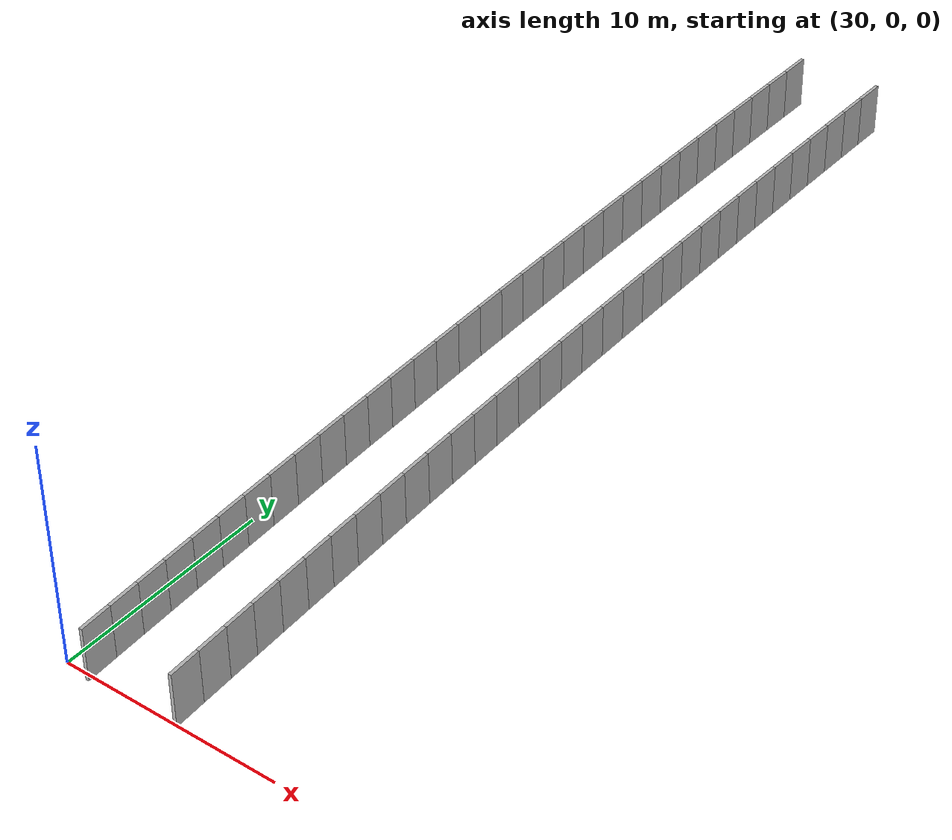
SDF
<?xml version="1.0" ?>
<sdf version="1.6">
  <model name="sps_0225">
    <pose frame="">0 0 0 0 -0 0</pose>
    <static>1</static>
    <self_collide>0</self_collide>
    <allow_auto_disable>0</allow_auto_disable>
    <link name="Wall5204">
      <kinematic>0</kinematic>
      <gravity>1</gravity>
      <self_collide>0</self_collide>
      <collision name="collision">
        <geometry>
          <box>
            <size>1.49643 0.15 2.5</size>
          </box>
        </geometry>
        <pose frame="">0 0 0 0 -0 0</pose>
      </collision>
      <visual name="visual">
        <geometry>
          <box>
            <size>1.49643 0.15 2.5</size>
          </box>
        </geometry>
        <pose frame="">0 0 0 0 -0 0</pose>
        <cast_shadows>1</cast_shadows>
        <transparency>0.0</transparency>
      </visual>
      <pose frame="">34.4289 48.5549 1.25 0 0 -1.57691</pose>
    </link>
    <link name="Wall5205">
      <kinematic>0</kinematic>
      <gravity>1</gravity>
      <self_collide>0</self_collide>
      <collision name="collision">
        <geometry>
          <box>
            <size>1.49666 0.15 2.5</size>
          </box>
        </geometry>
        <pose frame="">0 0 0 0 -0 0</pose>
      </collision>
      <visual name="visual">
        <geometry>
          <box>
            <size>1.49666 0.15 2.5</size>
          </box>
        </geometry>
        <pose frame="">0 0 0 0 -0 0</pose>
        <cast_shadows>1</cast_shadows>
        <transparency>0.0</transparency>
      </visual>
      <pose frame="">34.4209 47.0584 1.25 0 0 -1.57536</pose>
    </link>
    <link name="Wall5206">
      <kinematic>0</kinematic>
      <gravity>1</gravity>
      <self_collide>0</self_collide>
      <collision name="collision">
        <geometry>
          <box>
            <size>1.49641 0.15 2.5</size>
          </box>
        </geometry>
        <pose frame="">0 0 0 0 -0 0</pose>
      </collision>
      <visual name="visual">
        <geometry>
          <box>
            <size>1.49641 0.15 2.5</size>
          </box>
        </geometry>
        <pose frame="">0 0 0 0 -0 0</pose>
        <cast_shadows>1</cast_shadows>
        <transparency>0.0</transparency>
      </visual>
      <pose frame="">34.4152 45.5619 1.25 0 0 -1.57386</pose>
    </link>
    <link name="Wall5207">
      <kinematic>0</kinematic>
      <gravity>1</gravity>
      <self_collide>0</self_collide>
      <collision name="collision">
        <geometry>
          <box>
            <size>1.49658 0.15 2.5</size>
          </box>
        </geometry>
        <pose frame="">0 0 0 0 -0 0</pose>
      </collision>
      <visual name="visual">
        <geometry>
          <box>
            <size>1.49658 0.15 2.5</size>
          </box>
        </geometry>
        <pose frame="">0 0 0 0 -0 0</pose>
        <cast_shadows>1</cast_shadows>
        <transparency>0.0</transparency>
      </visual>
      <pose frame="">34.4118 44.0654 1.25 0 0 -1.57226</pose>
    </link>
    <link name="Wall5208">
      <kinematic>0</kinematic>
      <gravity>1</gravity>
      <self_collide>0</self_collide>
      <collision name="collision">
        <geometry>
          <box>
            <size>1.49658 0.15 2.5</size>
          </box>
        </geometry>
        <pose frame="">0 0 0 0 -0 0</pose>
      </collision>
      <visual name="visual">
        <geometry>
          <box>
            <size>1.49658 0.15 2.5</size>
          </box>
        </geometry>
        <pose frame="">0 0 0 0 -0 0</pose>
        <cast_shadows>1</cast_shadows>
        <transparency>0.0</transparency>
      </visual>
      <pose frame="">34.4108 42.5688 1.25 0 0 -1.57067</pose>
    </link>
    <link name="Wall5209">
      <kinematic>0</kinematic>
      <gravity>1</gravity>
      <self_collide>0</self_collide>
      <collision name="collision">
        <geometry>
          <box>
            <size>1.4964 0.15 2.5</size>
          </box>
        </geometry>
        <pose frame="">0 0 0 0 -0 0</pose>
      </collision>
      <visual name="visual">
        <geometry>
          <box>
            <size>1.4964 0.15 2.5</size>
          </box>
        </geometry>
        <pose frame="">0 0 0 0 -0 0</pose>
        <cast_shadows>1</cast_shadows>
        <transparency>0.0</transparency>
      </visual>
      <pose frame="">34.4122 41.0723 1.25 0 0 -1.56904</pose>
    </link>
    <link name="Wall5210">
      <kinematic>0</kinematic>
      <gravity>1</gravity>
      <self_collide>0</self_collide>
      <collision name="collision">
        <geometry>
          <box>
            <size>1.49665 0.15 2.5</size>
          </box>
        </geometry>
        <pose frame="">0 0 0 0 -0 0</pose>
      </collision>
      <visual name="visual">
        <geometry>
          <box>
            <size>1.49665 0.15 2.5</size>
          </box>
        </geometry>
        <pose frame="">0 0 0 0 -0 0</pose>
        <cast_shadows>1</cast_shadows>
        <transparency>0.0</transparency>
      </visual>
      <pose frame="">34.416 39.5758 1.25 0 0 -1.56745</pose>
    </link>
    <link name="Wall5211">
      <kinematic>0</kinematic>
      <gravity>1</gravity>
      <self_collide>0</self_collide>
      <collision name="collision">
        <geometry>
          <box>
            <size>1.49642 0.15 2.5</size>
          </box>
        </geometry>
        <pose frame="">0 0 0 0 -0 0</pose>
      </collision>
      <visual name="visual">
        <geometry>
          <box>
            <size>1.49642 0.15 2.5</size>
          </box>
        </geometry>
        <pose frame="">0 0 0 0 -0 0</pose>
        <cast_shadows>1</cast_shadows>
        <transparency>0.0</transparency>
      </visual>
      <pose frame="">34.4222 38.0793 1.25 0 0 -1.56586</pose>
    </link>
    <link name="Wall5212">
      <kinematic>0</kinematic>
      <gravity>1</gravity>
      <self_collide>0</self_collide>
      <collision name="collision">
        <geometry>
          <box>
            <size>1.49661 0.15 2.5</size>
          </box>
        </geometry>
        <pose frame="">0 0 0 0 -0 0</pose>
      </collision>
      <visual name="visual">
        <geometry>
          <box>
            <size>1.49661 0.15 2.5</size>
          </box>
        </geometry>
        <pose frame="">0 0 0 0 -0 0</pose>
        <cast_shadows>1</cast_shadows>
        <transparency>0.0</transparency>
      </visual>
      <pose frame="">34.4307 36.5828 1.25 0 0 -1.56427</pose>
    </link>
    <link name="Wall5213">
      <kinematic>0</kinematic>
      <gravity>1</gravity>
      <self_collide>0</self_collide>
      <collision name="collision">
        <geometry>
          <box>
            <size>1.49645 0.15 2.5</size>
          </box>
        </geometry>
        <pose frame="">0 0 0 0 -0 0</pose>
      </collision>
      <visual name="visual">
        <geometry>
          <box>
            <size>1.49645 0.15 2.5</size>
          </box>
        </geometry>
        <pose frame="">0 0 0 0 -0 0</pose>
        <cast_shadows>1</cast_shadows>
        <transparency>0.0</transparency>
      </visual>
      <pose frame="">34.4416 35.0863 1.25 0 0 -1.56276</pose>
    </link>
    <link name="Wall5214">
      <kinematic>0</kinematic>
      <gravity>1</gravity>
      <self_collide>0</self_collide>
      <collision name="collision">
        <geometry>
          <box>
            <size>1.49665 0.15 2.5</size>
          </box>
        </geometry>
        <pose frame="">0 0 0 0 -0 0</pose>
      </collision>
      <visual name="visual">
        <geometry>
          <box>
            <size>1.49665 0.15 2.5</size>
          </box>
        </geometry>
        <pose frame="">0 0 0 0 -0 0</pose>
        <cast_shadows>1</cast_shadows>
        <transparency>0.0</transparency>
      </visual>
      <pose frame="">34.4549 33.5898 1.25 0 0 -1.56117</pose>
    </link>
    <link name="Wall5215">
      <kinematic>0</kinematic>
      <gravity>1</gravity>
      <self_collide>0</self_collide>
      <collision name="collision">
        <geometry>
          <box>
            <size>1.4965 0.15 2.5</size>
          </box>
        </geometry>
        <pose frame="">0 0 0 0 -0 0</pose>
      </collision>
      <visual name="visual">
        <geometry>
          <box>
            <size>1.4965 0.15 2.5</size>
          </box>
        </geometry>
        <pose frame="">0 0 0 0 -0 0</pose>
        <cast_shadows>1</cast_shadows>
        <transparency>0.0</transparency>
      </visual>
      <pose frame="">34.4705 32.0933 1.25 0 0 -1.55946</pose>
    </link>
    <link name="Wall5216">
      <kinematic>0</kinematic>
      <gravity>1</gravity>
      <self_collide>0</self_collide>
      <collision name="collision">
        <geometry>
          <box>
            <size>1.49652 0.15 2.5</size>
          </box>
        </geometry>
        <pose frame="">0 0 0 0 -0 0</pose>
      </collision>
      <visual name="visual">
        <geometry>
          <box>
            <size>1.49652 0.15 2.5</size>
          </box>
        </geometry>
        <pose frame="">0 0 0 0 -0 0</pose>
        <cast_shadows>1</cast_shadows>
        <transparency>0.0</transparency>
      </visual>
      <pose frame="">34.4886 30.5969 1.25 0 0 -1.55795</pose>
    </link>
    <link name="Wall5217">
      <kinematic>0</kinematic>
      <gravity>1</gravity>
      <self_collide>0</self_collide>
      <collision name="collision">
        <geometry>
          <box>
            <size>1.49637 0.15 2.5</size>
          </box>
        </geometry>
        <pose frame="">0 0 0 0 -0 0</pose>
      </collision>
      <visual name="visual">
        <geometry>
          <box>
            <size>1.49637 0.15 2.5</size>
          </box>
        </geometry>
        <pose frame="">0 0 0 0 -0 0</pose>
        <cast_shadows>1</cast_shadows>
        <transparency>0.0</transparency>
      </visual>
      <pose frame="">34.5091 29.1006 1.25 0 0 -1.55636</pose>
    </link>
    <link name="Wall5218">
      <kinematic>0</kinematic>
      <gravity>1</gravity>
      <self_collide>0</self_collide>
      <collision name="collision">
        <geometry>
          <box>
            <size>1.49659 0.15 2.5</size>
          </box>
        </geometry>
        <pose frame="">0 0 0 0 -0 0</pose>
      </collision>
      <visual name="visual">
        <geometry>
          <box>
            <size>1.49659 0.15 2.5</size>
          </box>
        </geometry>
        <pose frame="">0 0 0 0 -0 0</pose>
        <cast_shadows>1</cast_shadows>
        <transparency>0.0</transparency>
      </visual>
      <pose frame="">34.5319 27.6043 1.25 0 0 -1.55477</pose>
    </link>
    <link name="Wall5219">
      <kinematic>0</kinematic>
      <gravity>1</gravity>
      <self_collide>0</self_collide>
      <collision name="collision">
        <geometry>
          <box>
            <size>1.49644 0.15 2.5</size>
          </box>
        </geometry>
        <pose frame="">0 0 0 0 -0 0</pose>
      </collision>
      <visual name="visual">
        <geometry>
          <box>
            <size>1.49644 0.15 2.5</size>
          </box>
        </geometry>
        <pose frame="">0 0 0 0 -0 0</pose>
        <cast_shadows>1</cast_shadows>
        <transparency>0.0</transparency>
      </visual>
      <pose frame="">34.5569 26.108 1.25 0 0 -1.5533</pose>
    </link>
    <link name="Wall5220">
      <kinematic>0</kinematic>
      <gravity>1</gravity>
      <self_collide>0</self_collide>
      <collision name="collision">
        <geometry>
          <box>
            <size>1.49668 0.15 2.5</size>
          </box>
        </geometry>
        <pose frame="">0 0 0 0 -0 0</pose>
      </collision>
      <visual name="visual">
        <geometry>
          <box>
            <size>1.49668 0.15 2.5</size>
          </box>
        </geometry>
        <pose frame="">0 0 0 0 -0 0</pose>
        <cast_shadows>1</cast_shadows>
        <transparency>0.0</transparency>
      </visual>
      <pose frame="">34.5844 24.6117 1.25 0 0 -1.55155</pose>
    </link>
    <link name="Wall5221">
      <kinematic>0</kinematic>
      <gravity>1</gravity>
      <self_collide>0</self_collide>
      <collision name="collision">
        <geometry>
          <box>
            <size>1.49654 0.15 2.5</size>
          </box>
        </geometry>
        <pose frame="">0 0 0 0 -0 0</pose>
      </collision>
      <visual name="visual">
        <geometry>
          <box>
            <size>1.49654 0.15 2.5</size>
          </box>
        </geometry>
        <pose frame="">0 0 0 0 -0 0</pose>
        <cast_shadows>1</cast_shadows>
        <transparency>0.0</transparency>
      </visual>
      <pose frame="">34.6143 23.1154 1.25 0 0 -1.55008</pose>
    </link>
    <link name="Wall5222">
      <kinematic>0</kinematic>
      <gravity>1</gravity>
      <self_collide>0</self_collide>
      <collision name="collision">
        <geometry>
          <box>
            <size>1.49634 0.15 2.5</size>
          </box>
        </geometry>
        <pose frame="">0 0 0 0 -0 0</pose>
      </collision>
      <visual name="visual">
        <geometry>
          <box>
            <size>1.49634 0.15 2.5</size>
          </box>
        </geometry>
        <pose frame="">0 0 0 0 -0 0</pose>
        <cast_shadows>1</cast_shadows>
        <transparency>0.0</transparency>
      </visual>
      <pose frame="">34.6465 21.6193 1.25 0 0 -1.54848</pose>
    </link>
    <link name="Wall5223">
      <kinematic>0</kinematic>
      <gravity>1</gravity>
      <self_collide>0</self_collide>
      <collision name="collision">
        <geometry>
          <box>
            <size>1.49664 0.15 2.5</size>
          </box>
        </geometry>
        <pose frame="">0 0 0 0 -0 0</pose>
      </collision>
      <visual name="visual">
        <geometry>
          <box>
            <size>1.49664 0.15 2.5</size>
          </box>
        </geometry>
        <pose frame="">0 0 0 0 -0 0</pose>
        <cast_shadows>1</cast_shadows>
        <transparency>0.0</transparency>
      </visual>
      <pose frame="">34.6811 20.1232 1.25 0 0 -1.54686</pose>
    </link>
    <link name="Wall5224">
      <kinematic>0</kinematic>
      <gravity>1</gravity>
      <self_collide>0</self_collide>
      <collision name="collision">
        <geometry>
          <box>
            <size>1.49646 0.15 2.5</size>
          </box>
        </geometry>
        <pose frame="">0 0 0 0 -0 0</pose>
      </collision>
      <visual name="visual">
        <geometry>
          <box>
            <size>1.49646 0.15 2.5</size>
          </box>
        </geometry>
        <pose frame="">0 0 0 0 -0 0</pose>
        <cast_shadows>1</cast_shadows>
        <transparency>0.0</transparency>
      </visual>
      <pose frame="">34.7182 18.6271 1.25 0 0 -1.54526</pose>
    </link>
    <link name="Wall5225">
      <kinematic>0</kinematic>
      <gravity>1</gravity>
      <self_collide>0</self_collide>
      <collision name="collision">
        <geometry>
          <box>
            <size>1.49658 0.15 2.5</size>
          </box>
        </geometry>
        <pose frame="">0 0 0 0 -0 0</pose>
      </collision>
      <visual name="visual">
        <geometry>
          <box>
            <size>1.49658 0.15 2.5</size>
          </box>
        </geometry>
        <pose frame="">0 0 0 0 -0 0</pose>
        <cast_shadows>1</cast_shadows>
        <transparency>0.0</transparency>
      </visual>
      <pose frame="">34.7576 17.1311 1.25 0 0 -1.54367</pose>
    </link>
    <link name="Wall5226">
      <kinematic>0</kinematic>
      <gravity>1</gravity>
      <self_collide>0</self_collide>
      <collision name="collision">
        <geometry>
          <box>
            <size>1.49659 0.15 2.5</size>
          </box>
        </geometry>
        <pose frame="">0 0 0 0 -0 0</pose>
      </collision>
      <visual name="visual">
        <geometry>
          <box>
            <size>1.49659 0.15 2.5</size>
          </box>
        </geometry>
        <pose frame="">0 0 0 0 -0 0</pose>
        <cast_shadows>1</cast_shadows>
        <transparency>0.0</transparency>
      </visual>
      <pose frame="">34.7994 15.6351 1.25 0 0 -1.54204</pose>
    </link>
    <link name="Wall5227">
      <kinematic>0</kinematic>
      <gravity>1</gravity>
      <self_collide>0</self_collide>
      <collision name="collision">
        <geometry>
          <box>
            <size>1.49647 0.15 2.5</size>
          </box>
        </geometry>
        <pose frame="">0 0 0 0 -0 0</pose>
      </collision>
      <visual name="visual">
        <geometry>
          <box>
            <size>1.49647 0.15 2.5</size>
          </box>
        </geometry>
        <pose frame="">0 0 0 0 -0 0</pose>
        <cast_shadows>1</cast_shadows>
        <transparency>0.0</transparency>
      </visual>
      <pose frame="">34.8435 14.1392 1.25 0 0 -1.54061</pose>
    </link>
    <link name="Wall5228">
      <kinematic>0</kinematic>
      <gravity>1</gravity>
      <self_collide>0</self_collide>
      <collision name="collision">
        <geometry>
          <box>
            <size>1.49655 0.15 2.5</size>
          </box>
        </geometry>
        <pose frame="">0 0 0 0 -0 0</pose>
      </collision>
      <visual name="visual">
        <geometry>
          <box>
            <size>1.49655 0.15 2.5</size>
          </box>
        </geometry>
        <pose frame="">0 0 0 0 -0 0</pose>
        <cast_shadows>1</cast_shadows>
        <transparency>0.0</transparency>
      </visual>
      <pose frame="">34.8899 12.6434 1.25 0 0 -1.53886</pose>
    </link>
    <link name="Wall5229">
      <kinematic>0</kinematic>
      <gravity>1</gravity>
      <self_collide>0</self_collide>
      <collision name="collision">
        <geometry>
          <box>
            <size>1.49644 0.15 2.5</size>
          </box>
        </geometry>
        <pose frame="">0 0 0 0 -0 0</pose>
      </collision>
      <visual name="visual">
        <geometry>
          <box>
            <size>1.49644 0.15 2.5</size>
          </box>
        </geometry>
        <pose frame="">0 0 0 0 -0 0</pose>
        <cast_shadows>1</cast_shadows>
        <transparency>0.0</transparency>
      </visual>
      <pose frame="">34.9388 11.1477 1.25 0 0 -1.53739</pose>
    </link>
    <link name="Wall5230">
      <kinematic>0</kinematic>
      <gravity>1</gravity>
      <self_collide>0</self_collide>
      <collision name="collision">
        <geometry>
          <box>
            <size>1.49652 0.15 2.5</size>
          </box>
        </geometry>
        <pose frame="">0 0 0 0 -0 0</pose>
      </collision>
      <visual name="visual">
        <geometry>
          <box>
            <size>1.49652 0.15 2.5</size>
          </box>
        </geometry>
        <pose frame="">0 0 0 0 -0 0</pose>
        <cast_shadows>1</cast_shadows>
        <transparency>0.0</transparency>
      </visual>
      <pose frame="">34.99 9.65211 1.25 0 0 -1.53576</pose>
    </link>
    <link name="Wall5231">
      <kinematic>0</kinematic>
      <gravity>1</gravity>
      <self_collide>0</self_collide>
      <collision name="collision">
        <geometry>
          <box>
            <size>1.49661 0.15 2.5</size>
          </box>
        </geometry>
        <pose frame="">0 0 0 0 -0 0</pose>
      </collision>
      <visual name="visual">
        <geometry>
          <box>
            <size>1.49661 0.15 2.5</size>
          </box>
        </geometry>
        <pose frame="">0 0 0 0 -0 0</pose>
        <cast_shadows>1</cast_shadows>
        <transparency>0.0</transparency>
      </visual>
      <pose frame="">35.0437 8.15651 1.25 0 0 -1.53417</pose>
    </link>
    <link name="Wall5232">
      <kinematic>0</kinematic>
      <gravity>1</gravity>
      <self_collide>0</self_collide>
      <collision name="collision">
        <geometry>
          <box>
            <size>1.4967 0.15 2.5</size>
          </box>
        </geometry>
        <pose frame="">0 0 0 0 -0 0</pose>
      </collision>
      <visual name="visual">
        <geometry>
          <box>
            <size>1.4967 0.15 2.5</size>
          </box>
        </geometry>
        <pose frame="">0 0 0 0 -0 0</pose>
        <cast_shadows>1</cast_shadows>
        <transparency>0.0</transparency>
      </visual>
      <pose frame="">35.0997 6.6609 1.25 0 0 -1.53258</pose>
    </link>
    <link name="Wall5233">
      <kinematic>0</kinematic>
      <gravity>1</gravity>
      <self_collide>0</self_collide>
      <collision name="collision">
        <geometry>
          <box>
            <size>1.49636 0.15 2.5</size>
          </box>
        </geometry>
        <pose frame="">0 0 0 0 -0 0</pose>
      </collision>
      <visual name="visual">
        <geometry>
          <box>
            <size>1.49636 0.15 2.5</size>
          </box>
        </geometry>
        <pose frame="">0 0 0 0 -0 0</pose>
        <cast_shadows>1</cast_shadows>
        <transparency>0.0</transparency>
      </visual>
      <pose frame="">35.158 5.16551 1.25 0 0 -1.5311</pose>
    </link>
    <link name="Wall5234">
      <kinematic>0</kinematic>
      <gravity>1</gravity>
      <self_collide>0</self_collide>
      <collision name="collision">
        <geometry>
          <box>
            <size>1.49652 0.15 2.5</size>
          </box>
        </geometry>
        <pose frame="">0 0 0 0 -0 0</pose>
      </collision>
      <visual name="visual">
        <geometry>
          <box>
            <size>1.49652 0.15 2.5</size>
          </box>
        </geometry>
        <pose frame="">0 0 0 0 -0 0</pose>
        <cast_shadows>1</cast_shadows>
        <transparency>0.0</transparency>
      </visual>
      <pose frame="">35.2186 3.6703 1.25 0 0 -1.52947</pose>
    </link>
    <link name="Wall5235">
      <kinematic>0</kinematic>
      <gravity>1</gravity>
      <self_collide>0</self_collide>
      <collision name="collision">
        <geometry>
          <box>
            <size>1.49656 0.15 2.5</size>
          </box>
        </geometry>
        <pose frame="">0 0 0 0 -0 0</pose>
      </collision>
      <visual name="visual">
        <geometry>
          <box>
            <size>1.49656 0.15 2.5</size>
          </box>
        </geometry>
        <pose frame="">0 0 0 0 -0 0</pose>
        <cast_shadows>1</cast_shadows>
        <transparency>0.0</transparency>
      </visual>
      <pose frame="">35.2816 2.17509 1.25 0 0 -1.52788</pose>
    </link>
    <link name="Wall5236">
      <kinematic>0</kinematic>
      <gravity>1</gravity>
      <self_collide>0</self_collide>
      <collision name="collision">
        <geometry>
          <box>
            <size>1.49649 0.15 2.5</size>
          </box>
        </geometry>
        <pose frame="">0 0 0 0 -0 0</pose>
      </collision>
      <visual name="visual">
        <geometry>
          <box>
            <size>1.49649 0.15 2.5</size>
          </box>
        </geometry>
        <pose frame="">0 0 0 0 -0 0</pose>
        <cast_shadows>1</cast_shadows>
        <transparency>0.0</transparency>
      </visual>
      <pose frame="">35.3471 0.680007 1.25 0 0 -1.52616</pose>
    </link>
    <link name="Wall7000">
      <kinematic>0</kinematic>
      <gravity>1</gravity>
      <self_collide>0</self_collide>
      <collision name="collision">
        <geometry>
          <box>
            <size>1.50302 0.15 2.5</size>
          </box>
        </geometry>
        <pose frame="">0 0 0 0 -0 0</pose>
      </collision>
      <visual name="visual">
        <geometry>
          <box>
            <size>1.50302 0.15 2.5</size>
          </box>
        </geometry>
        <pose frame="">0 0 0 0 -0 0</pose>
        <cast_shadows>1</cast_shadows>
        <transparency>0.0</transparency>
      </visual>
      <pose frame="">30.2897 48.5804 1.25 0 0 -1.57693</pose>
    </link>
    <link name="Wall7001">
      <kinematic>0</kinematic>
      <gravity>1</gravity>
      <self_collide>0</self_collide>
      <collision name="collision">
        <geometry>
          <box>
            <size>1.50319 0.15 2.5</size>
          </box>
        </geometry>
        <pose frame="">0 0 0 0 -0 0</pose>
      </collision>
      <visual name="visual">
        <geometry>
          <box>
            <size>1.50319 0.15 2.5</size>
          </box>
        </geometry>
        <pose frame="">0 0 0 0 -0 0</pose>
        <cast_shadows>1</cast_shadows>
        <transparency>0.0</transparency>
      </visual>
      <pose frame="">30.2815 47.0773 1.25 0 0 -1.57547</pose>
    </link>
    <link name="Wall7002">
      <kinematic>0</kinematic>
      <gravity>1</gravity>
      <self_collide>0</self_collide>
      <collision name="collision">
        <geometry>
          <box>
            <size>1.503 0.15 2.5</size>
          </box>
        </geometry>
        <pose frame="">0 0 0 0 -0 0</pose>
      </collision>
      <visual name="visual">
        <geometry>
          <box>
            <size>1.503 0.15 2.5</size>
          </box>
        </geometry>
        <pose frame="">0 0 0 0 -0 0</pose>
        <cast_shadows>1</cast_shadows>
        <transparency>0.0</transparency>
      </visual>
      <pose frame="">30.2758 45.5742 1.25 0 0 -1.57372</pose>
    </link>
    <link name="Wall7003">
      <kinematic>0</kinematic>
      <gravity>1</gravity>
      <self_collide>0</self_collide>
      <collision name="collision">
        <geometry>
          <box>
            <size>1.50324 0.15 2.5</size>
          </box>
        </geometry>
        <pose frame="">0 0 0 0 -0 0</pose>
      </collision>
      <visual name="visual">
        <geometry>
          <box>
            <size>1.50324 0.15 2.5</size>
          </box>
        </geometry>
        <pose frame="">0 0 0 0 -0 0</pose>
        <cast_shadows>1</cast_shadows>
        <transparency>0.0</transparency>
      </visual>
      <pose frame="">30.2725 44.0711 1.25 0 0 -1.57226</pose>
    </link>
    <link name="Wall7004">
      <kinematic>0</kinematic>
      <gravity>1</gravity>
      <self_collide>0</self_collide>
      <collision name="collision">
        <geometry>
          <box>
            <size>1.50299 0.15 2.5</size>
          </box>
        </geometry>
        <pose frame="">0 0 0 0 -0 0</pose>
      </collision>
      <visual name="visual">
        <geometry>
          <box>
            <size>1.50299 0.15 2.5</size>
          </box>
        </geometry>
        <pose frame="">0 0 0 0 -0 0</pose>
        <cast_shadows>1</cast_shadows>
        <transparency>0.0</transparency>
      </visual>
      <pose frame="">30.2715 42.568 1.25 0 0 -1.57067</pose>
    </link>
    <link name="Wall7005">
      <kinematic>0</kinematic>
      <gravity>1</gravity>
      <self_collide>0</self_collide>
      <collision name="collision">
        <geometry>
          <box>
            <size>1.50299 0.15 2.5</size>
          </box>
        </geometry>
        <pose frame="">0 0 0 0 -0 0</pose>
      </collision>
      <visual name="visual">
        <geometry>
          <box>
            <size>1.50299 0.15 2.5</size>
          </box>
        </geometry>
        <pose frame="">0 0 0 0 -0 0</pose>
        <cast_shadows>1</cast_shadows>
        <transparency>0.0</transparency>
      </visual>
      <pose frame="">30.2729 41.065 1.25 0 0 -1.56905</pose>
    </link>
    <link name="Wall7006">
      <kinematic>0</kinematic>
      <gravity>1</gravity>
      <self_collide>0</self_collide>
      <collision name="collision">
        <geometry>
          <box>
            <size>1.50318 0.15 2.5</size>
          </box>
        </geometry>
        <pose frame="">0 0 0 0 -0 0</pose>
      </collision>
      <visual name="visual">
        <geometry>
          <box>
            <size>1.50318 0.15 2.5</size>
          </box>
        </geometry>
        <pose frame="">0 0 0 0 -0 0</pose>
        <cast_shadows>1</cast_shadows>
        <transparency>0.0</transparency>
      </visual>
      <pose frame="">30.2768 39.5619 1.25 0 0 -1.56734</pose>
    </link>
    <link name="Wall7007">
      <kinematic>0</kinematic>
      <gravity>1</gravity>
      <self_collide>0</self_collide>
      <collision name="collision">
        <geometry>
          <box>
            <size>1.50307 0.15 2.5</size>
          </box>
        </geometry>
        <pose frame="">0 0 0 0 -0 0</pose>
      </collision>
      <visual name="visual">
        <geometry>
          <box>
            <size>1.50307 0.15 2.5</size>
          </box>
        </geometry>
        <pose frame="">0 0 0 0 -0 0</pose>
        <cast_shadows>1</cast_shadows>
        <transparency>0.0</transparency>
      </visual>
      <pose frame="">30.283 38.0588 1.25 0 0 -1.566</pose>
    </link>
    <link name="Wall7008">
      <kinematic>0</kinematic>
      <gravity>1</gravity>
      <self_collide>0</self_collide>
      <collision name="collision">
        <geometry>
          <box>
            <size>1.50321 0.15 2.5</size>
          </box>
        </geometry>
        <pose frame="">0 0 0 0 -0 0</pose>
      </collision>
      <visual name="visual">
        <geometry>
          <box>
            <size>1.50321 0.15 2.5</size>
          </box>
        </geometry>
        <pose frame="">0 0 0 0 -0 0</pose>
        <cast_shadows>1</cast_shadows>
        <transparency>0.0</transparency>
      </visual>
      <pose frame="">30.2916 36.5557 1.25 0 0 -1.56426</pose>
    </link>
    <link name="Wall7009">
      <kinematic>0</kinematic>
      <gravity>1</gravity>
      <self_collide>0</self_collide>
      <collision name="collision">
        <geometry>
          <box>
            <size>1.50304 0.15 2.5</size>
          </box>
        </geometry>
        <pose frame="">0 0 0 0 -0 0</pose>
      </collision>
      <visual name="visual">
        <geometry>
          <box>
            <size>1.50304 0.15 2.5</size>
          </box>
        </geometry>
        <pose frame="">0 0 0 0 -0 0</pose>
        <cast_shadows>1</cast_shadows>
        <transparency>0.0</transparency>
      </visual>
      <pose frame="">30.3026 35.0526 1.25 0 0 -1.56267</pose>
    </link>
    <link name="Wall7010">
      <kinematic>0</kinematic>
      <gravity>1</gravity>
      <self_collide>0</self_collide>
      <collision name="collision">
        <geometry>
          <box>
            <size>1.50306 0.15 2.5</size>
          </box>
        </geometry>
        <pose frame="">0 0 0 0 -0 0</pose>
      </collision>
      <visual name="visual">
        <geometry>
          <box>
            <size>1.50306 0.15 2.5</size>
          </box>
        </geometry>
        <pose frame="">0 0 0 0 -0 0</pose>
        <cast_shadows>1</cast_shadows>
        <transparency>0.0</transparency>
      </visual>
      <pose frame="">30.3159 33.5496 1.25 0 0 -1.56121</pose>
    </link>
    <link name="Wall7011">
      <kinematic>0</kinematic>
      <gravity>1</gravity>
      <self_collide>0</self_collide>
      <collision name="collision">
        <geometry>
          <box>
            <size>1.50309 0.15 2.5</size>
          </box>
        </geometry>
        <pose frame="">0 0 0 0 -0 0</pose>
      </collision>
      <visual name="visual">
        <geometry>
          <box>
            <size>1.50309 0.15 2.5</size>
          </box>
        </geometry>
        <pose frame="">0 0 0 0 -0 0</pose>
        <cast_shadows>1</cast_shadows>
        <transparency>0.0</transparency>
      </visual>
      <pose frame="">30.3316 32.0466 1.25 0 0 -1.55951</pose>
    </link>
    <link name="Wall7012">
      <kinematic>0</kinematic>
      <gravity>1</gravity>
      <self_collide>0</self_collide>
      <collision name="collision">
        <geometry>
          <box>
            <size>1.50318 0.15 2.5</size>
          </box>
        </geometry>
        <pose frame="">0 0 0 0 -0 0</pose>
      </collision>
      <visual name="visual">
        <geometry>
          <box>
            <size>1.50318 0.15 2.5</size>
          </box>
        </geometry>
        <pose frame="">0 0 0 0 -0 0</pose>
        <cast_shadows>1</cast_shadows>
        <transparency>0.0</transparency>
      </visual>
      <pose frame="">30.3498 30.5436 1.25 0 0 -1.55788</pose>
    </link>
    <link name="Wall7013">
      <kinematic>0</kinematic>
      <gravity>1</gravity>
      <self_collide>0</self_collide>
      <collision name="collision">
        <geometry>
          <box>
            <size>1.5029 0.15 2.5</size>
          </box>
        </geometry>
        <pose frame="">0 0 0 0 -0 0</pose>
      </collision>
      <visual name="visual">
        <geometry>
          <box>
            <size>1.5029 0.15 2.5</size>
          </box>
        </geometry>
        <pose frame="">0 0 0 0 -0 0</pose>
        <cast_shadows>1</cast_shadows>
        <transparency>0.0</transparency>
      </visual>
      <pose frame="">30.3703 29.0407 1.25 0 0 -1.55642</pose>
    </link>
    <link name="Wall7014">
      <kinematic>0</kinematic>
      <gravity>1</gravity>
      <self_collide>0</self_collide>
      <collision name="collision">
        <geometry>
          <box>
            <size>1.50324 0.15 2.5</size>
          </box>
        </geometry>
        <pose frame="">0 0 0 0 -0 0</pose>
      </collision>
      <visual name="visual">
        <geometry>
          <box>
            <size>1.50324 0.15 2.5</size>
          </box>
        </geometry>
        <pose frame="">0 0 0 0 -0 0</pose>
        <cast_shadows>1</cast_shadows>
        <transparency>0.0</transparency>
      </visual>
      <pose frame="">30.3931 27.5378 1.25 0 0 -1.55484</pose>
    </link>
    <link name="Wall7015">
      <kinematic>0</kinematic>
      <gravity>1</gravity>
      <self_collide>0</self_collide>
      <collision name="collision">
        <geometry>
          <box>
            <size>1.50298 0.15 2.5</size>
          </box>
        </geometry>
        <pose frame="">0 0 0 0 -0 0</pose>
      </collision>
      <visual name="visual">
        <geometry>
          <box>
            <size>1.50298 0.15 2.5</size>
          </box>
        </geometry>
        <pose frame="">0 0 0 0 -0 0</pose>
        <cast_shadows>1</cast_shadows>
        <transparency>0.0</transparency>
      </visual>
      <pose frame="">30.4183 26.0349 1.25 0 0 -1.55321</pose>
    </link>
    <link name="Wall7016">
      <kinematic>0</kinematic>
      <gravity>1</gravity>
      <self_collide>0</self_collide>
      <collision name="collision">
        <geometry>
          <box>
            <size>1.50308 0.15 2.5</size>
          </box>
        </geometry>
        <pose frame="">0 0 0 0 -0 0</pose>
      </collision>
      <visual name="visual">
        <geometry>
          <box>
            <size>1.50308 0.15 2.5</size>
          </box>
        </geometry>
        <pose frame="">0 0 0 0 -0 0</pose>
        <cast_shadows>1</cast_shadows>
        <transparency>0.0</transparency>
      </visual>
      <pose frame="">30.4459 24.5321 1.25 0 0 -1.55167</pose>
    </link>
    <link name="Wall7017">
      <kinematic>0</kinematic>
      <gravity>1</gravity>
      <self_collide>0</self_collide>
      <collision name="collision">
        <geometry>
          <box>
            <size>1.50313 0.15 2.5</size>
          </box>
        </geometry>
        <pose frame="">0 0 0 0 -0 0</pose>
      </collision>
      <visual name="visual">
        <geometry>
          <box>
            <size>1.50313 0.15 2.5</size>
          </box>
        </geometry>
        <pose frame="">0 0 0 0 -0 0</pose>
        <cast_shadows>1</cast_shadows>
        <transparency>0.0</transparency>
      </visual>
      <pose frame="">30.4759 23.0293 1.25 0 0 -1.55</pose>
    </link>
    <link name="Wall7018">
      <kinematic>0</kinematic>
      <gravity>1</gravity>
      <self_collide>0</self_collide>
      <collision name="collision">
        <geometry>
          <box>
            <size>1.503 0.15 2.5</size>
          </box>
        </geometry>
        <pose frame="">0 0 0 0 -0 0</pose>
      </collision>
      <visual name="visual">
        <geometry>
          <box>
            <size>1.503 0.15 2.5</size>
          </box>
        </geometry>
        <pose frame="">0 0 0 0 -0 0</pose>
        <cast_shadows>1</cast_shadows>
        <transparency>0.0</transparency>
      </visual>
      <pose frame="">30.5084 21.5266 1.25 0 0 -1.54834</pose>
    </link>
    <link name="Wall7019">
      <kinematic>0</kinematic>
      <gravity>1</gravity>
      <self_collide>0</self_collide>
      <collision name="collision">
        <geometry>
          <box>
            <size>1.50324 0.15 2.5</size>
          </box>
        </geometry>
        <pose frame="">0 0 0 0 -0 0</pose>
      </collision>
      <visual name="visual">
        <geometry>
          <box>
            <size>1.50324 0.15 2.5</size>
          </box>
        </geometry>
        <pose frame="">0 0 0 0 -0 0</pose>
        <cast_shadows>1</cast_shadows>
        <transparency>0.0</transparency>
      </visual>
      <pose frame="">30.5432 20.0239 1.25 0 0 -1.54684</pose>
    </link>
    <link name="Wall7020">
      <kinematic>0</kinematic>
      <gravity>1</gravity>
      <self_collide>0</self_collide>
      <collision name="collision">
        <geometry>
          <box>
            <size>1.50305 0.15 2.5</size>
          </box>
        </geometry>
        <pose frame="">0 0 0 0 -0 0</pose>
      </collision>
      <visual name="visual">
        <geometry>
          <box>
            <size>1.50305 0.15 2.5</size>
          </box>
        </geometry>
        <pose frame="">0 0 0 0 -0 0</pose>
        <cast_shadows>1</cast_shadows>
        <transparency>0.0</transparency>
      </visual>
      <pose frame="">30.5803 18.5212 1.25 0 0 -1.54537</pose>
    </link>
    <link name="Wall7021">
      <kinematic>0</kinematic>
      <gravity>1</gravity>
      <self_collide>0</self_collide>
      <collision name="collision">
        <geometry>
          <box>
            <size>1.50299 0.15 2.5</size>
          </box>
        </geometry>
        <pose frame="">0 0 0 0 -0 0</pose>
      </collision>
      <visual name="visual">
        <geometry>
          <box>
            <size>1.50299 0.15 2.5</size>
          </box>
        </geometry>
        <pose frame="">0 0 0 0 -0 0</pose>
        <cast_shadows>1</cast_shadows>
        <transparency>0.0</transparency>
      </visual>
      <pose frame="">30.6197 17.0187 1.25 0 0 -1.54379</pose>
    </link>
    <link name="Wall7022">
      <kinematic>0</kinematic>
      <gravity>1</gravity>
      <self_collide>0</self_collide>
      <collision name="collision">
        <geometry>
          <box>
            <size>1.503 0.15 2.5</size>
          </box>
        </geometry>
        <pose frame="">0 0 0 0 -0 0</pose>
      </collision>
      <visual name="visual">
        <geometry>
          <box>
            <size>1.503 0.15 2.5</size>
          </box>
        </geometry>
        <pose frame="">0 0 0 0 -0 0</pose>
        <cast_shadows>1</cast_shadows>
        <transparency>0.0</transparency>
      </visual>
      <pose frame="">30.6616 15.5163 1.25 0 0 -1.54204</pose>
    </link>
    <link name="Wall7023">
      <kinematic>0</kinematic>
      <gravity>1</gravity>
      <self_collide>0</self_collide>
      <collision name="collision">
        <geometry>
          <box>
            <size>1.50307 0.15 2.5</size>
          </box>
        </geometry>
        <pose frame="">0 0 0 0 -0 0</pose>
      </collision>
      <visual name="visual">
        <geometry>
          <box>
            <size>1.50307 0.15 2.5</size>
          </box>
        </geometry>
        <pose frame="">0 0 0 0 -0 0</pose>
        <cast_shadows>1</cast_shadows>
        <transparency>0.0</transparency>
      </visual>
      <pose frame="">30.706 14.0139 1.25 0 0 -1.54058</pose>
    </link>
    <link name="Wall7024">
      <kinematic>0</kinematic>
      <gravity>1</gravity>
      <self_collide>0</self_collide>
      <collision name="collision">
        <geometry>
          <box>
            <size>1.50321 0.15 2.5</size>
          </box>
        </geometry>
        <pose frame="">0 0 0 0 -0 0</pose>
      </collision>
      <visual name="visual">
        <geometry>
          <box>
            <size>1.50321 0.15 2.5</size>
          </box>
        </geometry>
        <pose frame="">0 0 0 0 -0 0</pose>
        <cast_shadows>1</cast_shadows>
        <transparency>0.0</transparency>
      </visual>
      <pose frame="">30.7526 12.5115 1.25 0 0 -1.53888</pose>
    </link>
    <link name="Wall7025">
      <kinematic>0</kinematic>
      <gravity>1</gravity>
      <self_collide>0</self_collide>
      <collision name="collision">
        <geometry>
          <box>
            <size>1.50304 0.15 2.5</size>
          </box>
        </geometry>
        <pose frame="">0 0 0 0 -0 0</pose>
      </collision>
      <visual name="visual">
        <geometry>
          <box>
            <size>1.50304 0.15 2.5</size>
          </box>
        </geometry>
        <pose frame="">0 0 0 0 -0 0</pose>
        <cast_shadows>1</cast_shadows>
        <transparency>0.0</transparency>
      </visual>
      <pose frame="">30.8017 11.0092 1.25 0 0 -1.53737</pose>
    </link>
    <link name="Wall7026">
      <kinematic>0</kinematic>
      <gravity>1</gravity>
      <self_collide>0</self_collide>
      <collision name="collision">
        <geometry>
          <box>
            <size>1.50312 0.15 2.5</size>
          </box>
        </geometry>
        <pose frame="">0 0 0 0 -0 0</pose>
      </collision>
      <visual name="visual">
        <geometry>
          <box>
            <size>1.50312 0.15 2.5</size>
          </box>
        </geometry>
        <pose frame="">0 0 0 0 -0 0</pose>
        <cast_shadows>1</cast_shadows>
        <transparency>0.0</transparency>
      </visual>
      <pose frame="">30.8532 9.50697 1.25 0 0 -1.53579</pose>
    </link>
    <link name="Wall7027">
      <kinematic>0</kinematic>
      <gravity>1</gravity>
      <self_collide>0</self_collide>
      <collision name="collision">
        <geometry>
          <box>
            <size>1.50297 0.15 2.5</size>
          </box>
        </geometry>
        <pose frame="">0 0 0 0 -0 0</pose>
      </collision>
      <visual name="visual">
        <geometry>
          <box>
            <size>1.50297 0.15 2.5</size>
          </box>
        </geometry>
        <pose frame="">0 0 0 0 -0 0</pose>
        <cast_shadows>1</cast_shadows>
        <transparency>0.0</transparency>
      </visual>
      <pose frame="">30.9071 8.0049 1.25 0 0 -1.53408</pose>
    </link>
    <link name="Wall7028">
      <kinematic>0</kinematic>
      <gravity>1</gravity>
      <self_collide>0</self_collide>
      <collision name="collision">
        <geometry>
          <box>
            <size>1.50329 0.15 2.5</size>
          </box>
        </geometry>
        <pose frame="">0 0 0 0 -0 0</pose>
      </collision>
      <visual name="visual">
        <geometry>
          <box>
            <size>1.50329 0.15 2.5</size>
          </box>
        </geometry>
        <pose frame="">0 0 0 0 -0 0</pose>
        <cast_shadows>1</cast_shadows>
        <transparency>0.0</transparency>
      </visual>
      <pose frame="">30.9633 6.50282 1.25 0 0 -1.53262</pose>
    </link>
    <link name="Wall7029">
      <kinematic>0</kinematic>
      <gravity>1</gravity>
      <self_collide>0</self_collide>
      <collision name="collision">
        <geometry>
          <box>
            <size>1.5032 0.15 2.5</size>
          </box>
        </geometry>
        <pose frame="">0 0 0 0 -0 0</pose>
      </collision>
      <visual name="visual">
        <geometry>
          <box>
            <size>1.5032 0.15 2.5</size>
          </box>
        </geometry>
        <pose frame="">0 0 0 0 -0 0</pose>
        <cast_shadows>1</cast_shadows>
        <transparency>0.0</transparency>
      </visual>
      <pose frame="">31.0219 5.00072 1.25 0 0 -1.53099</pose>
    </link>
    <link name="Wall7030">
      <kinematic>0</kinematic>
      <gravity>1</gravity>
      <self_collide>0</self_collide>
      <collision name="collision">
        <geometry>
          <box>
            <size>1.50311 0.15 2.5</size>
          </box>
        </geometry>
        <pose frame="">0 0 0 0 -0 0</pose>
      </collision>
      <visual name="visual">
        <geometry>
          <box>
            <size>1.50311 0.15 2.5</size>
          </box>
        </geometry>
        <pose frame="">0 0 0 0 -0 0</pose>
        <cast_shadows>1</cast_shadows>
        <transparency>0.0</transparency>
      </visual>
      <pose frame="">31.0828 3.49879 1.25 0 0 -1.52953</pose>
    </link>
    <link name="Wall7031">
      <kinematic>0</kinematic>
      <gravity>1</gravity>
      <self_collide>0</self_collide>
      <collision name="collision">
        <geometry>
          <box>
            <size>1.50297 0.15 2.5</size>
          </box>
        </geometry>
        <pose frame="">0 0 0 0 -0 0</pose>
      </collision>
      <visual name="visual">
        <geometry>
          <box>
            <size>1.50297 0.15 2.5</size>
          </box>
        </geometry>
        <pose frame="">0 0 0 0 -0 0</pose>
        <cast_shadows>1</cast_shadows>
        <transparency>0.0</transparency>
      </visual>
      <pose frame="">31.146 1.99708 1.25 0 0 -1.52794</pose>
    </link>
    <link name="Wall7032">
      <kinematic>0</kinematic>
      <gravity>1</gravity>
      <self_collide>0</self_collide>
      <collision name="collision">
        <geometry>
          <box>
            <size>1.50308 0.15 2.5</size>
          </box>
        </geometry>
        <pose frame="">0 0 0 0 -0 0</pose>
      </collision>
      <visual name="visual">
        <geometry>
          <box>
            <size>1.50308 0.15 2.5</size>
          </box>
        </geometry>
        <pose frame="">0 0 0 0 -0 0</pose>
        <cast_shadows>1</cast_shadows>
        <transparency>0.0</transparency>
      </visual>
      <pose frame="">31.2118 0.495498 1.25 0 0 -1.5262</pose>
    </link>
  </model>
</sdf>
